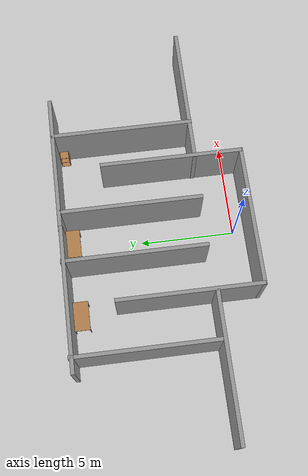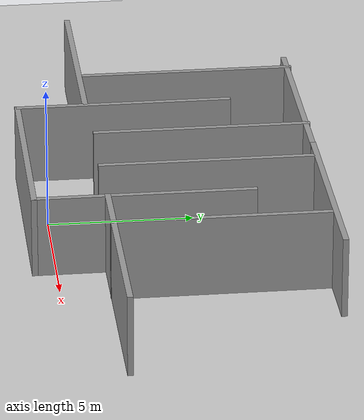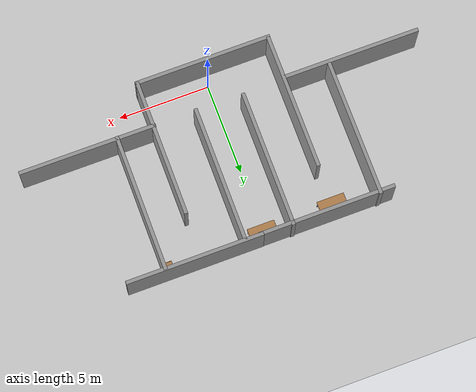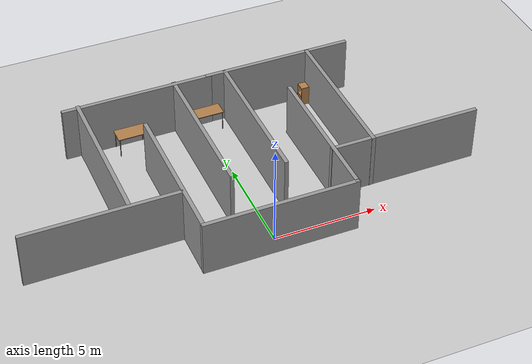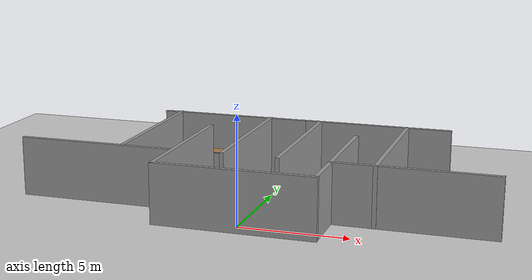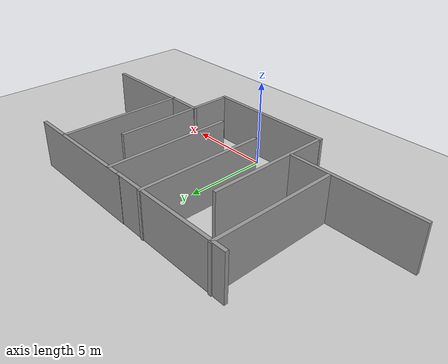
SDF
<sdf version="1.6">
 <world name="default">
  <light name="sun" type="directional">
   <pose>0 0 10 0 -0 0</pose>
   <diffuse>0.8 0.8 0.8 1</diffuse>
   <specular>0.2 0.2 0.2 1</specular>
   <attenuation>
    <range>1000</range>
    <constant>0.9</constant>
    <linear>0.01</linear>
    <quadratic>0.001</quadratic>
   </attenuation>
   <direction>-0.5 0.1 -0.9</direction>
  </light>
  <model name="ground_plane">
   <static>1</static>
   <link name="link">
    <collision name="collision">
     <geometry><plane><normal>0 0 1</normal><size>100 100</size></plane></geometry>
     <surface><friction><ode><mu>100</mu><mu2>50</mu2></ode></friction></surface>
    </collision>
    <visual name="visual">
     <cast_shadows>0</cast_shadows>
     <geometry><plane><normal>0 0 1</normal><size>100 100</size></plane></geometry>
     <material>
      <script><uri>file://media/materials/scripts/gazebo.material</uri><name>Gazebo/Grey</name></script>
     </material>
    </visual>
   </link>
  </model>
  <gravity>0 0 -9.8</gravity>
  <magnetic_field>6e-06 2.3e-05 -4.2e-05</magnetic_field>
  <atmosphere type="adiabatic"/>
  <physics name="default_physics" default="0" type="ode">
   <max_step_size>0.001</max_step_size>
   <real_time_factor>1</real_time_factor>
   <real_time_update_rate>1000</real_time_update_rate>
  </physics>
  <scene><ambient>0.4 0.4 0.4 1</ambient><background>0.7 0.7 0.7 1</background><shadows>1</shadows></scene>
  <spherical_coordinates>
   <surface_model>EARTH_WGS84</surface_model>
   <latitude_deg>0</latitude_deg>
   <longitude_deg>0</longitude_deg>
   <elevation>0</elevation>
   <heading_deg>0</heading_deg>
  </spherical_coordinates>
  <model name="grey_wall">
   <static>1</static>
   <link name="link">
    <pose>0 0 1.4 0 -0 0</pose>
    <collision name="collision"><geometry><box><size>7.5 0.2 2.8</size></box></geometry></collision>
    <visual name="visual">
     <cast_shadows>0</cast_shadows>
     <geometry><box><size>7.5 0.2 2.8</size></box></geometry>
     <material>
      <script>
       <uri>model://grey_wall/materials/scripts</uri>
       <uri>model://grey_wall/materials/textures</uri>
       <name>vrc/grey_wall</name>
      </script>
     </material>
    </visual>
   </link>
   <pose>0.016637 -0.727438 0 0 -0 0</pose>
  </model>
  <model name="grey_wall_clone">
   <static>1</static>
   <link name="link">
    <pose>0 0 1.4 0 -0 0</pose>
    <collision name="collision"><geometry><box><size>7.5 0.2 2.8</size></box></geometry></collision>
    <visual name="visual">
     <cast_shadows>0</cast_shadows>
     <geometry><box><size>7.5 0.2 2.8</size></box></geometry>
     <material>
      <script>
       <uri>model://grey_wall/materials/scripts</uri>
       <uri>model://grey_wall/materials/textures</uri>
       <name>vrc/grey_wall</name>
      </script>
     </material>
    </visual>
   </link>
   <pose>-3.62171 2.97481 0 0 0 -1.57159</pose>
  </model>
  <model name="grey_wall_clone_clone">
   <static>1</static>
   <link name="link">
    <pose>0 0 1.4 0 -0 0</pose>
    <collision name="collision"><geometry><box><size>7.5 0.2 2.8</size></box></geometry></collision>
    <visual name="visual">
     <cast_shadows>0</cast_shadows>
     <geometry><box><size>7.5 0.2 2.8</size></box></geometry>
     <material>
      <script>
       <uri>model://grey_wall/materials/scripts</uri>
       <uri>model://grey_wall/materials/textures</uri>
       <name>vrc/grey_wall</name>
      </script>
     </material>
    </visual>
   </link>
   <pose>3.66298 2.97376 0 0 0 -1.57159</pose>
  </model>
  <model name="grey_wall_clone_clone_clone">
   <static>1</static>
   <link name="link">
    <pose>0 0 1.4 0 -0 0</pose>
    <collision name="collision"><geometry><box><size>7.5 0.2 2.8</size></box></geometry></collision>
    <visual name="visual">
     <cast_shadows>0</cast_shadows>
     <geometry><box><size>7.5 0.2 2.8</size></box></geometry>
     <material>
      <script>
       <uri>model://grey_wall/materials/scripts</uri>
       <uri>model://grey_wall/materials/textures</uri>
       <name>vrc/grey_wall</name>
      </script>
     </material>
    </visual>
   </link>
   <pose>-1.31469 5.45165 0 0 0 -1.57159</pose>
  </model>
  <model name="grey_wall_clone_clone_clone_0">
   <static>1</static>
   <link name="link">
    <pose>0 0 1.4 0 -0 0</pose>
    <collision name="collision"><geometry><box><size>7.5 0.2 2.8</size></box></geometry></collision>
    <visual name="visual">
     <cast_shadows>0</cast_shadows>
     <geometry><box><size>7.5 0.2 2.8</size></box></geometry>
     <material>
      <script>
       <uri>model://grey_wall/materials/scripts</uri>
       <uri>model://grey_wall/materials/textures</uri>
       <name>vrc/grey_wall</name>
      </script>
     </material>
    </visual>
   </link>
   <pose>1.2951 5.37984 0 0 0 -1.57159</pose>
  </model>
  <model name="grey_wall_clone_0">
   <static>1</static>
   <link name="link">
    <pose>0 0 1.4 0 -0 0</pose>
    <collision name="collision"><geometry><box><size>7.5 0.2 2.8</size></box></geometry></collision>
    <visual name="visual">
     <cast_shadows>0</cast_shadows>
     <geometry><box><size>7.5 0.2 2.8</size></box></geometry>
     <material>
      <script>
       <uri>model://grey_wall/materials/scripts</uri>
       <uri>model://grey_wall/materials/textures</uri>
       <name>vrc/grey_wall</name>
      </script>
     </material>
    </visual>
   </link>
   <pose>-3.18874 9.05297 0 0 -0 0</pose>
  </model>
  <model name="grey_wall_clone_1">
   <static>1</static>
   <link name="link">
    <pose>0 0 1.4 0 -0 0</pose>
    <collision name="collision"><geometry><box><size>7.5 0.2 2.8</size></box></geometry></collision>
    <visual name="visual">
     <cast_shadows>0</cast_shadows>
     <geometry><box><size>7.5 0.2 2.8</size></box></geometry>
     <material>
      <script>
       <uri>model://grey_wall/materials/scripts</uri>
       <uri>model://grey_wall/materials/textures</uri>
       <name>vrc/grey_wall</name>
      </script>
     </material>
    </visual>
   </link>
   <pose>4.03929 9.06836 0 0 -0 0</pose>
  </model>
  <model name="grey_wall_clone_2">
   <static>1</static>
   <link name="link">
    <pose>0 0 1.4 0 -0 0</pose>
    <collision name="collision"><geometry><box><size>7.5 0.2 2.8</size></box></geometry></collision>
    <visual name="visual">
     <cast_shadows>0</cast_shadows>
     <geometry><box><size>7.5 0.2 2.8</size></box></geometry>
     <material>
      <script>
       <uri>model://grey_wall/materials/scripts</uri>
       <uri>model://grey_wall/materials/textures</uri>
       <name>vrc/grey_wall</name>
      </script>
     </material>
    </visual>
   </link>
   <pose>7.28053 1.73293 0 0 -0 0</pose>
  </model>
  <model name="grey_wall_clone_3">
   <static>1</static>
   <link name="link">
    <pose>0 0 1.4 0 -0 0</pose>
    <collision name="collision"><geometry><box><size>7.5 0.2 2.8</size></box></geometry></collision>
    <visual name="visual">
     <cast_shadows>0</cast_shadows>
     <geometry><box><size>7.5 0.2 2.8</size></box></geometry>
     <material>
      <script>
       <uri>model://grey_wall/materials/scripts</uri>
       <uri>model://grey_wall/materials/textures</uri>
       <name>vrc/grey_wall</name>
      </script>
     </material>
    </visual>
   </link>
   <pose>-7.40809 1.63383 0 0 -0 0</pose>
  </model>
  <model name="grey_wall_clone_clone_clone_clone">
   <static>1</static>
   <link name="link">
    <pose>0 0 1.4 0 -0 0</pose>
    <collision name="collision"><geometry><box><size>7.5 0.2 2.8</size></box></geometry></collision>
    <visual name="visual">
     <cast_shadows>0</cast_shadows>
     <geometry><box><size>7.5 0.2 2.8</size></box></geometry>
     <material>
      <script>
       <uri>model://grey_wall/materials/scripts</uri>
       <uri>model://grey_wall/materials/textures</uri>
       <name>vrc/grey_wall</name>
      </script>
     </material>
    </visual>
   </link>
   <pose>-6.11984 5.46276 0 0 0 -1.57159</pose>
  </model>
  <model name="grey_wall_clone_clone_clone_clone_0">
   <static>1</static>
   <link name="link">
    <pose>0 0 1.4 0 -0 0</pose>
    <collision name="collision"><geometry><box><size>7.5 0.2 2.8</size></box></geometry></collision>
    <visual name="visual">
     <cast_shadows>0</cast_shadows>
     <geometry><box><size>7.5 0.2 2.8</size></box></geometry>
     <material>
      <script>
       <uri>model://grey_wall/materials/scripts</uri>
       <uri>model://grey_wall/materials/textures</uri>
       <name>vrc/grey_wall</name>
      </script>
     </material>
    </visual>
   </link>
   <pose>5.64315 5.3711 0 0 0 -1.57159</pose>
  </model>
  <model name="table">
   <static>1</static>
   <link name="link">
    <collision name="surface">
     <pose>0 0 1 0 -0 0</pose>
     <geometry><box><size>1.5 0.8 0.03</size></box></geometry>
     <surface><friction><ode><mu>0.6</mu><mu2>0.6</mu2></ode></friction></surface>
    </collision>
    <visual name="visual1">
     <pose>0 0 1 0 -0 0</pose>
     <geometry><box><size>1.5 0.8 0.03</size></box></geometry>
     <material>
      <script><uri>file://media/materials/scripts/gazebo.material</uri><name>Gazebo/Wood</name></script>
     </material>
    </visual>
    <collision name="front_left_leg">
     <pose>0.68 0.38 0.5 0 -0 0</pose>
     <geometry><cylinder><radius>0.02</radius><length>1</length></cylinder></geometry>
    </collision>
    <visual name="front_left_leg">
     <pose>0.68 0.38 0.5 0 -0 0</pose>
     <geometry><cylinder><radius>0.02</radius><length>1</length></cylinder></geometry>
     <material>
      <script><uri>file://media/materials/scripts/gazebo.material</uri><name>Gazebo/Grey</name></script>
     </material>
    </visual>
    <collision name="front_right_leg">
     <pose>0.68 -0.38 0.5 0 -0 0</pose>
     <geometry><cylinder><radius>0.02</radius><length>1</length></cylinder></geometry>
    </collision>
    <visual name="front_right_leg">
     <pose>0.68 -0.38 0.5 0 -0 0</pose>
     <geometry><cylinder><radius>0.02</radius><length>1</length></cylinder></geometry>
     <material>
      <script><uri>file://media/materials/scripts/gazebo.material</uri><name>Gazebo/Grey</name></script>
     </material>
    </visual>
    <collision name="back_right_leg">
     <pose>-0.68 -0.38 0.5 0 -0 0</pose>
     <geometry><cylinder><radius>0.02</radius><length>1</length></cylinder></geometry>
    </collision>
    <visual name="back_right_leg">
     <pose>-0.68 -0.38 0.5 0 -0 0</pose>
     <geometry><cylinder><radius>0.02</radius><length>1</length></cylinder></geometry>
     <material>
      <script><uri>file://media/materials/scripts/gazebo.material</uri><name>Gazebo/Grey</name></script>
     </material>
    </visual>
    <collision name="back_left_leg">
     <pose>-0.68 0.38 0.5 0 -0 0</pose>
     <geometry><cylinder><radius>0.02</radius><length>1</length></cylinder></geometry>
    </collision>
    <visual name="back_left_leg">
     <pose>-0.68 0.38 0.5 0 -0 0</pose>
     <geometry><cylinder><radius>0.02</radius><length>1</length></cylinder></geometry>
     <material>
      <script><uri>file://media/materials/scripts/gazebo.material</uri><name>Gazebo/Grey</name></script>
     </material>
    </visual>
   </link>
   <pose>-3.7975 8.53019 0 0 -0 0</pose>
  </model>
  <model name="table_clone">
   <static>1</static>
   <link name="link">
    <collision name="surface">
     <pose>0 0 1 0 -0 0</pose>
     <geometry><box><size>1.5 0.8 0.03</size></box></geometry>
     <surface><friction><ode><mu>0.6</mu><mu2>0.6</mu2></ode></friction></surface>
    </collision>
    <visual name="visual1">
     <pose>0 0 1 0 -0 0</pose>
     <geometry><box><size>1.5 0.8 0.03</size></box></geometry>
     <material>
      <script><uri>file://media/materials/scripts/gazebo.material</uri><name>Gazebo/Wood</name></script>
     </material>
    </visual>
    <collision name="front_left_leg">
     <pose>0.68 0.38 0.5 0 -0 0</pose>
     <geometry><cylinder><radius>0.02</radius><length>1</length></cylinder></geometry>
    </collision>
    <visual name="front_left_leg">
     <pose>0.68 0.38 0.5 0 -0 0</pose>
     <geometry><cylinder><radius>0.02</radius><length>1</length></cylinder></geometry>
     <material>
      <script><uri>file://media/materials/scripts/gazebo.material</uri><name>Gazebo/Grey</name></script>
     </material>
    </visual>
    <collision name="front_right_leg">
     <pose>0.68 -0.38 0.5 0 -0 0</pose>
     <geometry><cylinder><radius>0.02</radius><length>1</length></cylinder></geometry>
    </collision>
    <visual name="front_right_leg">
     <pose>0.68 -0.38 0.5 0 -0 0</pose>
     <geometry><cylinder><radius>0.02</radius><length>1</length></cylinder></geometry>
     <material>
      <script><uri>file://media/materials/scripts/gazebo.material</uri><name>Gazebo/Grey</name></script>
     </material>
    </visual>
    <collision name="back_right_leg">
     <pose>-0.68 -0.38 0.5 0 -0 0</pose>
     <geometry><cylinder><radius>0.02</radius><length>1</length></cylinder></geometry>
    </collision>
    <visual name="back_right_leg">
     <pose>-0.68 -0.38 0.5 0 -0 0</pose>
     <geometry><cylinder><radius>0.02</radius><length>1</length></cylinder></geometry>
     <material>
      <script><uri>file://media/materials/scripts/gazebo.material</uri><name>Gazebo/Grey</name></script>
     </material>
    </visual>
    <collision name="back_left_leg">
     <pose>-0.68 0.38 0.5 0 -0 0</pose>
     <geometry><cylinder><radius>0.02</radius><length>1</length></cylinder></geometry>
    </collision>
    <visual name="back_left_leg">
     <pose>-0.68 0.38 0.5 0 -0 0</pose>
     <geometry><cylinder><radius>0.02</radius><length>1</length></cylinder></geometry>
     <material>
      <script><uri>file://media/materials/scripts/gazebo.material</uri><name>Gazebo/Grey</name></script>
     </material>
    </visual>
   </link>
   <pose>0.127213 8.62946 0 0 -0 0</pose>
  </model>
  <model name="cabinet">
   <static>1</static>
   <link name="cabinet_bottom_plate">
    <inertial>
     <pose>0 0 -1 0 -0 0</pose>
     <inertia><ixx>2.05</ixx><ixy>0</ixy><ixz>0</ixz><iyy>2.05</iyy><iyz>0</iyz><izz>2.05</izz></inertia>
     <mass>25</mass>
    </inertial>
    <collision name="cabinet_bottom_plate_geom">
     <pose>0 0 0.01 0 -0 0</pose>
     <geometry><box><size>0.45 0.45 0.02</size></box></geometry>
    </collision>
    <visual name="cabinet_bottom_plate_geom_visual">
     <pose>0 0 0.01 0 -0 0</pose>
     <geometry><box><size>0.45 0.45 0.02</size></box></geometry>
     <material>
      <script><uri>file://media/materials/scripts/gazebo.material</uri><name>Gazebo/Wood</name></script>
     </material>
    </visual>
    <collision name="cabinet_bottom_plate_geom_cabinet_back_plate">
     <pose>0.235 0 0.51 0 -0 0</pose>
     <geometry><box><size>0.02 0.45 1.02</size></box></geometry>
    </collision>
    <visual name="cabinet_bottom_plate_geom_cabinet_back_plate_visual">
     <pose>0.235 0 0.51 0 -0 0</pose>
     <geometry><box><size>0.02 0.45 1.02</size></box></geometry>
     <material>
      <script><uri>file://media/materials/scripts/gazebo.material</uri><name>Gazebo/Wood</name></script>
     </material>
    </visual>
    <collision name="cabinet_bottom_plate_geom_cabinet_left_plate">
     <pose>0 0.235 0.51 0 -0 0</pose>
     <geometry><box><size>0.45 0.02 1.02</size></box></geometry>
    </collision>
    <visual name="cabinet_bottom_plate_geom_cabinet_left_plate_visual">
     <pose>0 0.235 0.51 0 -0 0</pose>
     <geometry><box><size>0.45 0.02 1.02</size></box></geometry>
     <material>
      <script><uri>file://media/materials/scripts/gazebo.material</uri><name>Gazebo/Wood</name></script>
     </material>
    </visual>
    <collision name="cabinet_bottom_plate_geom_cabinet_middle_plate">
     <pose>0 0 0.51 0 -0 0</pose>
     <geometry><box><size>0.45 0.45 0.02</size></box></geometry>
    </collision>
    <visual name="cabinet_bottom_plate_geom_cabinet_middle_plate_visual">
     <pose>0 0 0.51 0 -0 0</pose>
     <geometry><box><size>0.45 0.45 0.02</size></box></geometry>
     <material>
      <script><uri>file://media/materials/scripts/gazebo.material</uri><name>Gazebo/Wood</name></script>
     </material>
    </visual>
    <collision name="cabinet_bottom_plate_geom_cabinet_right_plate">
     <pose>0 -0.235 0.51 0 -0 0</pose>
     <geometry><box><size>0.45 0.02 1.02</size></box></geometry>
    </collision>
    <visual name="cabinet_bottom_plate_geom_cabinet_right_plate_visual">
     <pose>0 -0.235 0.51 0 -0 0</pose>
     <geometry><box><size>0.45 0.02 1.02</size></box></geometry>
     <material>
      <script><uri>file://media/materials/scripts/gazebo.material</uri><name>Gazebo/Wood</name></script>
     </material>
    </visual>
    <collision name="cabinet_bottom_plate_geom_cabinet_top_plate">
     <pose>0 0 1.01 0 -0 0</pose>
     <geometry><box><size>0.45 0.45 0.02</size></box></geometry>
    </collision>
    <visual name="cabinet_bottom_plate_geom_cabinet_top_plate_visual">
     <pose>0 0 1.01 0 -0 0</pose>
     <geometry><box><size>0.45 0.45 0.02</size></box></geometry>
     <material>
      <script><uri>file://media/materials/scripts/gazebo.material</uri><name>Gazebo/Wood</name></script>
     </material>
    </visual>
   </link>
   <pose>5.35993 8.66398 0 0 -0 0</pose>
  </model>
 </world>
</sdf>
